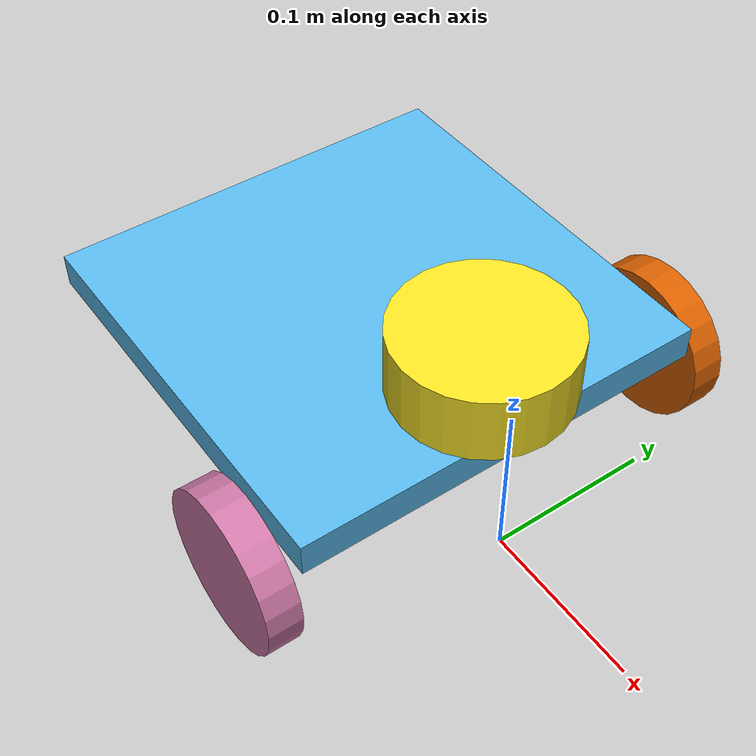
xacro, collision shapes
<?xml version="1.0"?>
<robot  xmlns:xacro="http://ros.org/wiki/xacro"
        name="onebot" >

    <xacro:include filename="$(find onebot_description)/urdf/caster.urdf.xacro" />
    <xacro:include filename="$(find onebot_description)/urdf/wheel.urdf.xacro" />
    <xacro:include filename="$(find onebot_description)/urdf/materials.urdf.xacro" />
    <xacro:include filename="$(find onebot_description)/urdf/lidar.urdf.xacro" />

    <xacro:arg name="mesh_enabled" default="true" />
    <xacro:arg name="robot_namespace" default="/"/>

    <link   name = "base_link">
        <inertial>
            <origin xyz="-0.108 0 -0.02579" rpy="0 0 0"/>
            <mass value="3.978"/>
            <inertia ixx="0.021858680" ixy="0.0" ixz="0.010020353"
                    iyy="0.078572349" iyz="-0.0"
                    izz="0.091971324"/>
        </inertial>
        <visual>
            <xacro:if value="$(arg mesh_enabled)">
                <origin xyz="0 0 0" rpy="0 0 3.1415926" />
                <geometry>
                    <mesh filename="package://onebot_description/meshes/mice_body_der.stl" />
                </geometry>
            </xacro:if>
            <xacro:unless value="$(arg mesh_enabled)">
                <origin xyz="-0.125 0 -0.01" rpy="0 0 0" />
                <geometry>
                    <box size="0.25 0.25 0.02" />
                </geometry>
                <material name="Blue" />
            </xacro:unless>
        </visual>
        <collision>
            <origin xyz="-0.125 0 -0.01" rpy="0 0 0" />
            <geometry>
                <box size="0.25 0.25 0.02" />
            </geometry>
        </collision>
    </link>

    <link   name =  "base_footprint"/>

    <joint name = "base_joint"  type = "fixed">
        <parent link="base_footprint"/>
        <child link="base_link"/>
        <origin xyz="0.0 0.0 0.09188" rpy="0 0 0" />
        <axis xyz="0 1 0" rpy="0 0 0" />
    </joint>

    <xacro:caster caster_prefix="rear" parent_link="base_link" >
        <origin xyz="-0.20 0.0 -0.02533" rpy="0 0 0" />
    </xacro:caster>

    <xacro:wheel wheel_prefix="left" parent_link="base_link" >
        <origin xyz="-0.04 0.14 -0.045" rpy="0 0 0" />
    </xacro:wheel>

    <xacro:wheel wheel_prefix="right" parent_link="base_link" >
        <origin xyz="-0.04 -0.14 -0.045" rpy="0 0 0" />
    </xacro:wheel>

    <gazebo>
        <plugin name="gazebo_ros_control" filename="libgazebo_ros_control.so">
        <robotNamespace>$(arg robot_namespace)</robotNamespace>
        <legacyModeNS>true</legacyModeNS>
        </plugin>
    </gazebo>

</robot>

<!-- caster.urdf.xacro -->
<robot xmlns:xacro="http://ros.org/wiki/xacro" >

	<!-- Caster Dimensions -->
	<!-- These Dimensions are directly taken from the Solidworks model-->
    <xacro:property name="caster_wheel_length" value="0.02333" />
    <xacro:property name="caster_wheel_radius" value="0.024165" />
    <xacro:property name="caster_base_length" value="0.015" />
    <xacro:property name="caster_base_radius" value="0.015" />
    <xacro:property name="caster_base_joint_x" value="-0.02626" />
    <xacro:property name="caster_base_joint_z" value="-0.042385" />
    <xacro:property name="caster_base_link_z" value="-0.05615" />
    <xacro:property name="M_PI" value="3.14" />

	<xacro:property name="wheel_kp" value="600000" />
    <xacro:property name="wheel_kd" value="3" />
    <xacro:property name="wheel_mu1" value="10000000" />
    <xacro:property name="wheel_mu2" value="10000000" />

	<xacro:macro name="caster" params="caster_prefix parent_link *joint_pose">
		<!-- Caster Wheel Link -->
		<link name="${caster_prefix}_caster_link">
			<!--  These values are taken from the mass properties tool of Solidworks			 -->
			<inertial>
				<mass value="0.03837" />
				<origin xyz="0 0 0" />
				<inertia  ixx="0.000008221" ixy="0" ixz="0" iyy="0.000013003" iyz="0" izz="0.000008221" />
			</inertial>
			<!-- Here we included visual mesh generated from Blender as
  				 the visual geometry of the caster wheel link-->
			<visual>
                <origin xyz="0 0 0" rpy="${M_PI/2} 0 0" />
				<geometry>
					<mesh filename="package://onebot_description/meshes/caswheel.dae" />
				</geometry>
			</visual>
			<!--  A simplified cylinder is used as the collision geometry -->
			<collision>
				<origin xyz="0 0 0" rpy="${M_PI/2} 0 0" />
				<geometry>
					<cylinder length="${caster_wheel_length/2}" radius="${caster_wheel_radius}" />
				</geometry>
			</collision>
		</link>

		<!-- Caster Base Link -->
        <link name="${caster_prefix}_caster_base">
			<inertial>
				<mass value="0.06597" />
				<origin xyz="-0.01204 0 -0.01454" />
				<inertia  ixx="0.000039912" ixy="0" ixz="0.000017794" iyy="0.000050728" iyz="0" izz="0.000035261" />
			</inertial>
			<visual>
				<!-- Here the xacro arguments have been used. If the argument is true the visual mesh is used as
	 				 the visual geometry otherwise a simple cylinder is used as the visual geometry-->
				<xacro:if value="$(arg mesh_enabled)">
					<origin xyz="0 0 0" rpy="0 0 0" />
					<geometry>
						<mesh filename="package://onebot_description/meshes/caster_base2.dae" />
					</geometry>
				</xacro:if>
				<xacro:unless value="$(arg mesh_enabled)">
					<origin xyz="0 0 ${-caster_base_length/2}" rpy="0 0 0" />
					<geometry>
						<cylinder length="${caster_base_length}" radius="${caster_base_radius}" />
					</geometry>
				</xacro:unless>
			</visual>
			<collision>
				<origin xyz="0 0 ${-caster_base_length/2}" rpy="0 0 0" />
				<geometry>
					<cylinder length="${caster_base_length}" radius="${caster_base_radius}" />
				</geometry>
			</collision>
		</link>

		<!-- Caster Base Link and Wheel Link Joint
			 This joint is defined as a continuous type which enables the continuous movement in the joint. -->
        <joint name="${caster_prefix}_cwheel" type="continuous">
			<parent link="${caster_prefix}_caster_base"/>
			<child link="${caster_prefix}_caster_link"/>
			<origin xyz="${caster_base_joint_x} 0 ${caster_base_joint_z}" rpy="0 0 0" />
			<axis xyz="0 1 0" rpy="0 0 0" />
		</joint>

		<!-- Caster base and parent joint
			 This joint is also defined as continuous. A friction tag is added to model the friction
			 in the actual casters. Change the values and find which suits the best-->
		<joint name="${caster_prefix}_caster" type="continuous">
			<parent link="${parent_link}"/>
			<child link="${caster_prefix}_caster_base"/>
			<xacro:insert_block name="joint_pose"/>
			<axis xyz="0 0 1" rpy="0 0 0" />
			<dynamics friction="0.100" />
		</joint>

		<!-- The Gazebo physics engine ODE parameters are defined -->
		<gazebo reference="${caster_prefix}_caster_link">
			<mu1 value="${wheel_mu1}"/>
			<mu2 value="${wheel_mu2}"/>
			<kp>${wheel_kp}</kp>
    		<kd>${wheel_kd}</kd>
			<dampingFactor>0.05</dampingFactor>
			<fdir1 value="1 0 0"/>
		</gazebo>

        <gazebo reference="${caster_prefix}_caster_base">
			<mu1 value="${wheel_mu1}"/>
			<mu2 value="${wheel_mu2}"/>
			<kp>${wheel_kp}</kp>
    		<kd>${wheel_kd}</kd>
			<fdir1 value="1 0 0"/>
		</gazebo>

		<!-- A transmission tag is added to visualize the motion of the caster in Rviz through
			 the joint state controller -->
		<transmission name="${caster_prefix}_caster_trans" type="SimpleTransmission">
			<type>transmission_interface/SimpleTransmission</type>
			<actuator name="${caster_prefix}_caster_motor">
				<mechanicalReduction>1</mechanicalReduction>
			</actuator>
			<joint name="${caster_prefix}_caster">
				<hardwareInterface>hardware_interface/EffortJointInterface</hardwareInterface>
			</joint>
		</transmission>

		<transmission name="${caster_prefix}_casterbase_trans" type="SimpleTransmission">
			<type>transmission_interface/SimpleTransmission</type>
			<actuator name="${caster_prefix}_casterbase_motor">
				<mechanicalReduction>1</mechanicalReduction>
			</actuator>
			<joint name="${caster_prefix}_cwheel">
				<hardwareInterface>hardware_interface/EffortJointInterface</hardwareInterface>
			</joint>
		</transmission>

	</xacro:macro>

</robot>

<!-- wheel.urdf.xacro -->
<robot name="wheel" xmlns:xacro="http://ros.org/wiki/xacro" >

  	<xacro:property name="wheel_kp" value="600000" />
    <xacro:property name="wheel_kd" value="3" />
    <xacro:property name="wheel_mu1" value="10000000" />
    <xacro:property name="wheel_mu2" value="10000000" />

<xacro:macro name="wheel" params="wheel_prefix parent_link *joint_pose">

		<!-- Wheel Link -->
		<link name="${wheel_prefix}_wheel_link">
			<inertial>
				<mass value="0.144" />
				<origin xyz="0 0 0" />
				<inertia  ixx="0.00008929863" ixy="0" ixz="0" iyy="0.000168983" iyz="0" izz="0.00008929863" />
			</inertial>
			<visual>
				<xacro:if value="$(arg mesh_enabled)">
					<origin xyz="0 0 0" rpy="0 0 ${M_PI/2}" />
					<geometry>
						<mesh filename="package://onebot_description/meshes/wheel.dae" />
					</geometry>
				</xacro:if>
				<xacro:unless value="$(arg mesh_enabled)">
					<origin xyz="0 0 0" rpy="${M_PI/2} 0 0" />
					<geometry>
						<cylinder length="0.02" radius="0.04688" />
					</geometry>
				</xacro:unless>
			</visual>
			<collision>
				<origin xyz="0 0 0" rpy="${M_PI/2} 0 0" />
				<geometry>
						<cylinder length="0.02" radius="0.04688" />
				</geometry>
			</collision>
		</link>

		<!-- Wheel Joint -->
		<joint name="${wheel_prefix}_wheel" type="continuous">
			<parent link="${parent_link}"/>
			<child link="${wheel_prefix}_wheel_link"/>
			<xacro:insert_block name="joint_pose"/>
			<axis xyz="0 1 0" rpy="0 0 0" />
			<dynamics damping="0.5" friction="100.0" />
		</joint>

		<gazebo reference="${wheel_prefix}_wheel_link">
			<mu1 value="${wheel_mu1}"/>
			<mu2 value="${wheel_mu2}"/>
			<kp>${wheel_kp}</kp>
    		<kd>${wheel_kd}</kd>
			<dampingFactor>0.05</dampingFactor>
			<fdir1 value="1 0 0"/>
		</gazebo>

		<transmission name="${wheel_prefix}_wheel_trans" type="SimpleTransmission">
			<type>transmission_interface/SimpleTransmission</type>
			<actuator name="${wheel_prefix}_wheel_motor">
				<mechanicalReduction>1</mechanicalReduction>
			</actuator>
			<joint name="${wheel_prefix}_wheel">
				<hardwareInterface>hardware_interface/VelocityJointInterface</hardwareInterface>
			</joint>
		</transmission>

</xacro:macro>

</robot>

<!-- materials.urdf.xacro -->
<robot>
  <material name="Blue">
    <color rgba="0.0 0.0 0.8 1.0"/>
  </material>

  <material name="Green">
    <color rgba="0.0 0.8 0.0 1.0"/>
  </material>

  <material name="Grey">
    <color rgba="0.7 0.7 0.7 1.0"/>
  </material>

  <material name="LightGrey">
    <color rgba="0.9 0.9 0.9 1.0"/>
  </material>

 <material name="DarkGrey">
   <color rgba="0.1 0.1 0.1 1.0"/>
 </material>

  <material name="Red">
    <color rgba="0.8 0.0 0.0 1.0"/>
  </material>

  <material name="White">
    <color rgba="1.0 1.0 1.0 1.0"/>
  </material>

  <material name="Yellow">
    <color rgba="0.96 0.88 0.14 1.0"/>
  </material>
</robot>

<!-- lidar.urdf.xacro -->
<robot xmlns:xacro="http://www.ros.org/wiki/xacro" >

    <joint name="laser_joint" type="fixed">
        <parent link="base_link"/>
        <child link="laser_frame"/>
        <origin xyz="-0.025 0 0.0325" rpy="0 0 0"/>
    </joint>

    <link name="laser_frame">
        <visual>
            <geometry>
                <cylinder radius="0.05" length="0.04"/>
            </geometry>
            <material name="Yellow"/>
        </visual>
        <collision>
            <geometry>
                <cylinder radius="0.05" length="0.04"/>
            </geometry>
        </collision>
        <inertial>
            <mass value="1e-5" />
            <origin xyz="0 0 0" rpy="0 0 0"/>
            <inertia ixx="1e-6" ixy="0" ixz="0" iyy="1e-6" iyz="0" izz="1e-6" />
        </inertial>
    </link>

    <gazebo reference="laser_frame">
        <material>Gazebo/Yellow</material>
        <sensor type="ray" name="head_hokuyo_sensor">
        <pose>0 0 0 0 0 0</pose>
        <visualize>true</visualize>
        <update_rate>15</update_rate>
        <ray>
            <scan>
            <horizontal>
                <samples>360</samples>
                <resolution>1</resolution>
                <min_angle>-1.570796</min_angle>
                <max_angle>1.570796</max_angle>
            </horizontal>
            </scan>
            <range>
            <min>0.10</min>
            <max>7.0</max>
            <resolution>0.01</resolution>
            </range>
            <noise>
            <type>gaussian</type>
            <mean>0.0</mean>
            <stddev>0.01</stddev>
            </noise>
        </ray>
        <plugin name="gazebo_ros_head_hokuyo_controller" filename="libgazebo_ros_laser.so">
            <topicName>/scan</topicName>
            <frameName>laser_frame</frameName>
        </plugin>
        </sensor>
    </gazebo>
</robot>
